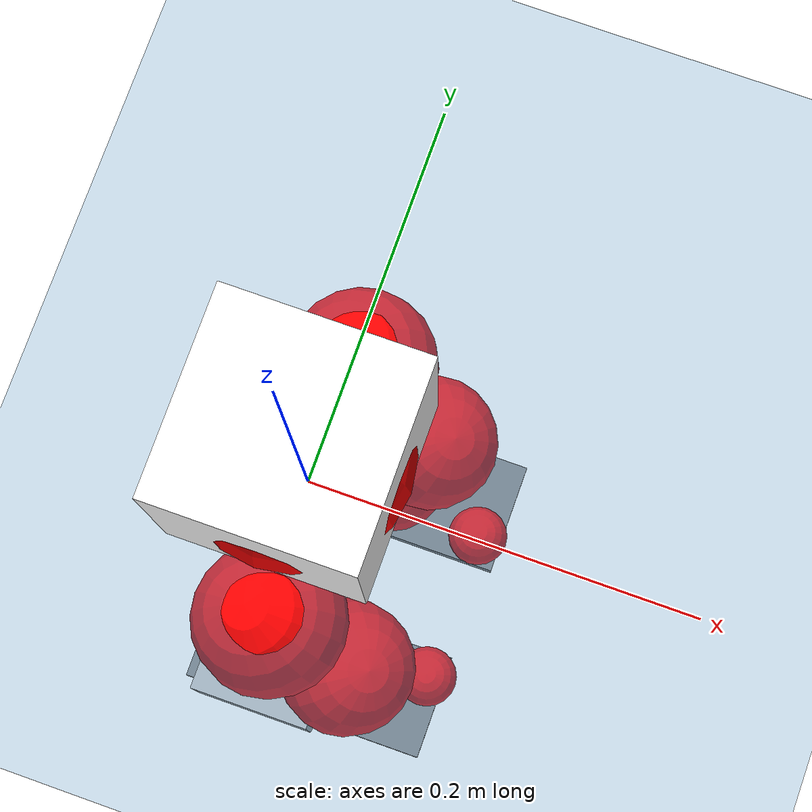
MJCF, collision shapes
<mujoco model="pi_12dof_release_v1">
  <compiler angle="radian" assetdir="assets" balanceinertia="true" inertiafromgeom="false"/>

  <option timestep="0.005" density="1.2" viscosity="2e-05"/>

  <size nkey="1"/>

  <visual>
    <quality shadowsize="8192"/>
    <map shadowclip="0.5"/>
  </visual>

  <default>
    <default class="/">
      <joint armature="0.01" damping="0.01" frictionloss="0.01"/>
      <geom contype="0" conaffinity="0" group="1" solref="-1000 -80"/>
      <site size="0.01 0.005 0.005" group="5"/>
      <general forcelimited="true" biastype="affine" gainprm="20" biasprm="0 -20 -0.5"/>
      <default class="foot">
        <geom size="0.0845 0.036 0.005" type="box" condim="6" group="4" priority="1" friction="0.9 0.2 0.2" solimp="0.015 1 0.005"/>
      </default>
      <default class="reward_collision_sphere">
        <geom group="5" rgba="1 0 0 1"/>
      </default>
    </default>
  </default>

  <asset>
    <texture type="skybox" colorspace="auto" name="//unnamed_texture_0" builtin="gradient" rgb1="0.95 0.95 0.95" rgb2="0.95 0.95 0.95" width="100" height="600"/>
    <texture type="2d" colorspace="auto" name="texplane" builtin="checker" rgb1="0.345 0.575 0.748" rgb2="0.345 0.575 0.748" markrgb="1 1 1" width="512" height="512"/>
    <material name="MatPlane" class="/" texture="texplane" texuniform="true" texrepeat="2 2" specular="0.9"/>
    <mesh name="baselink_1" class="/" file="baselink_1.STL"/>
    <mesh name="r_hip_pitch_link" class="/" file="r_hip_pitch_link.STL"/>
    <mesh name="r_hip_roll_link" class="/" file="r_hip_roll_link.STL"/>
    <mesh name="r_thigh_link" class="/" file="r_thigh_link.STL"/>
    <mesh name="r_calf_link" class="/" file="r_calf_link.STL"/>
    <mesh name="r_ankle_pitch_link" class="/" file="r_ankle_pitch_link.STL"/>
    <mesh name="r_ankle_roll_link" class="/" file="r_ankle_roll_link.STL"/>
    <mesh name="l_hip_pitch_link" class="/" file="l_hip_pitch_link.STL"/>
    <mesh name="l_hip_roll_link" class="/" file="l_hip_roll_link.STL"/>
    <mesh name="l_thigh_link" class="/" file="l_thigh_link.STL"/>
    <mesh name="l_calf_link" class="/" file="l_calf_link.STL"/>
    <mesh name="l_ankle_pitch_link" class="/" file="l_ankle_pitch_link.STL"/>
    <mesh name="l_ankle_roll_link" class="/" file="l_ankle_roll_link.STL"/>
  </asset>

  <worldbody>
    <geom name="floor" class="/" size="100 100 0.125" type="plane" group="0" material="MatPlane"/>
    <light name="toplight_shadow" class="/" pos="0 0 5" dir="0.0990148 0.0990148 -0.990148" type="directional" ambient="0.04 0.04 0.04" diffuse="0.55 0.55 0.55" specular="0.12 0.12 0.12"/>
    <light name="toplight_fill" class="/" pos="0 0 5" dir="0.0990148 0.0990148 -0.990148" type="directional" castshadow="false" ambient="0.04 0.04 0.04" diffuse="0.3 0.3 0.3" specular="0.08 0.08 0.08"/>
    <body name="trunk" pos="-0.00027529 -0.000102634 -0.000286196" quat="1 -4.31378e-05 -0.000175966 -0.00032442">
      <inertial pos="0.0010855 -0.00123274 0.0423815" quat="0.696628 0.00942025 0.00817898 0.717324" mass="2.11016" diaginertia="0.0125115 0.00469306 0.00509409"/>
      <joint name="//unnamed_joint_0" type="free"/>
      <geom name="//unnamed_geom_1" class="/" type="mesh" density="0" rgba="1 1 1 1" mesh="baselink_1"/>
      <geom name="//unnamed_geom_2" class="/" size="0.0495104 0.0495104 0.0495104" pos="0 0 0.0832508" type="box" rgba="1 1 1 1"/>
      <geom name="//unnamed_geom_3" class="reward_collision_sphere" size="0.0544614" pos="0 0 0.0728445"/>
      <site name="imu" class="/" pos="0.00279668 -0.000116197 -0.00269636" size="0.00990207"/>
      <camera name="track" class="/" pos="0 -1.75706 0" quat="0.707107 0.707107 0 0" mode="trackcom"/>
      <camera name="ego_camera" class="/" pos="0.0788593 0 0.187314" quat="-0.5 -0.5 0.5 0.5"/>
      <body name="r_hip_pitch_link" pos="0.00045781 -0.0190292 -0.0335965" quat="0.992195 3.42017e-06 -0.124699 -2.11428e-05">
        <inertial pos="0.00121008 -0.0488787 -1.39523e-05" quat="-0.0191691 0.705955 -0.0278792 0.707449" mass="0.349507" diaginertia="0.0001376 5.06507e-05 9.9808e-05"/>
        <joint name="r_hip_pitch_joint" class="/" pos="0 0 0" axis="0.00130391 -0.999998 -0.001579" range="-1.7472 1.2329" armature="0.0098625" damping="0.0133917" frictionloss="0.0102231"/>
        <geom name="//unnamed_geom_4" class="/" type="mesh" density="0" rgba="0.75294 0.75294 0.75294 1" mesh="r_hip_pitch_link"/>
        <geom name="//unnamed_geom_5" class="/" size="0.000495104 0.000495104 0.000495104" type="box" rgba="0.75294 0.75294 0.75294 1"/>
        <body name="r_hip_roll_link" pos="0.00134739 -0.0476841 -0.000952828" quat="1 -4.35271e-05 2.22745e-05 -5.04264e-05">
          <inertial pos="-0.00108796 1.05619e-05 -0.0644039" quat="0.704464 -0.0791841 -0.0824376 0.700474" mass="0.381139" diaginertia="0.000429622 0.000143867 0.000156984"/>
          <joint name="r_hip_roll_joint" class="/" pos="0 0 0" axis="-0.999995 -0.00328704 -9.48119e-05" range="-0.114612 0.498245" armature="0.0103581" damping="0.000531194" frictionloss="0.010263"/>
          <geom name="//unnamed_geom_6" class="/" type="mesh" density="0" rgba="0.75294 0.75294 0.75294 1" mesh="r_hip_roll_link"/>
          <geom name="//unnamed_geom_7" class="/" size="0.000495104 0.000495104 0.000495104" type="box" rgba="0.75294 0.75294 0.75294 1"/>
          <geom name="//unnamed_geom_8" class="reward_collision_sphere" size="0.0396083"/>
          <body name="r_thigh_link" pos="-0.000882161 0.00121882 -0.0717026" quat="1 -1.67169e-05 0.000115774 -2.60594e-05">
            <inertial pos="0.000306924 0.0011238 -0.0484934" quat="0.737179 0.675698 -0.000388757 -0.000423138" mass="0.108821" diaginertia="0.000159851 4.92181e-05 7.06657e-05"/>
            <joint name="r_thigh_joint" class="/" pos="0 0 0" axis="-0.000172064 0.000517395 -1" range="-0.288884 0.585843" armature="0.010242" damping="0.0099508" frictionloss="0.00946581"/>
            <geom name="//unnamed_geom_9" class="/" type="mesh" density="0" rgba="0.75294 0.75294 0.75294 1" mesh="r_thigh_link"/>
            <geom name="//unnamed_geom_10" class="/" size="0.000495104 0.000495104 0.000495104" type="box" rgba="0.75294 0.75294 0.75294 1"/>
            <body name="r_calf_link" pos="-0.000842482 -0.00276458 -0.0733967" quat="0.947647 1.50131e-06 0.319318 6.6125e-06">
              <inertial pos="0.000449353 -0.00211325 -0.0718569" quat="0.999958 -0.000846615 -0.000438225 0.00914047" mass="0.796839" diaginertia="0.00457123 0.00185381 0.000215699"/>
              <joint name="r_calf_joint" class="/" pos="0 0 0" axis="-0.00499912 -0.999987 -0.000119953" stiffness="0.00191651" range="-1.64968 0.635617" armature="0.0103642" damping="0.00804802" frictionloss="0.00980664"/>
              <geom name="//unnamed_geom_11" class="/" type="mesh" density="0" rgba="0.75294 0.75294 0.75294 1" mesh="r_calf_link"/>
              <geom name="//unnamed_geom_12" class="/" size="0.000495104 0.000495104 0.000495104" type="box" rgba="0.75294 0.75294 0.75294 1"/>
              <geom name="//unnamed_geom_13" class="reward_collision_sphere" size="0.0396083"/>
              <body name="r_ankle_pitch_link" pos="-5.92427e-05 0.000767523 -0.145975" quat="0.980063 1.25211e-05 -0.198689 1.6934e-05">
                <inertial pos="0.00546357 0.00290004 0.000713457" quat="0.00500548 0.709641 -0.00301515 0.704539" mass="0.16891" diaginertia="0.0003972 0.000115528 0.000146342"/>
                <joint name="r_ankle_pitch_joint" class="/" pos="0 0 0" axis="0.00385058 -0.999986 -0.00376455" range="-1.29506 0.484789" armature="0.00941851" damping="0.0065904" frictionloss="0.00990877"/>
                <geom name="//unnamed_geom_14" class="/" type="mesh" density="0" rgba="0.75294 0.75294 0.75294 1" mesh="r_ankle_pitch_link"/>
                <geom name="//unnamed_geom_15" class="/" size="0.0386181 0.0396083 0.0247552" type="box" rgba="0.75294 0.75294 0.75294 1"/>
                <body name="r_ankle_roll_link" pos="0.0811333 0.00332436 -0.000408473" quat="1 0.000236026 -0.000299323 0.00018162">
                  <inertial pos="-0.0248019 0.000119675 -0.0152893" quat="0.563056 0.431794 0.43177 0.556864" mass="0.495324" diaginertia="0.00143626 0.000542284 0.000343784"/>
                  <joint name="r_ankle_roll_joint" class="/" pos="0 0 0" axis="-0.999993 0.00373143 0.000786151" range="-0.166641 0.151532" armature="0.0102707" damping="0.00693278" frictionloss="0.0100211"/>
                  <geom name="//unnamed_geom_16" class="/" type="mesh" density="0" rgba="0.75294 0.75294 0.75294 1" mesh="r_ankle_roll_link"/>
                  <geom name="//unnamed_geom_17" class="/" type="mesh" rgba="0.75294 0.75294 0.75294 1" mesh="r_ankle_roll_link"/>
                  <geom name="right_foot" class="foot" size="0.0811003 0.0345073 0.00475838" pos="-0.0536243 0 -0.0457879"/>
                  <geom name="//unnamed_geom_19" class="reward_collision_sphere" size="0.0396083" pos="-0.0525728 0 -0.0208127"/>
                  <geom name="//unnamed_geom_20" class="reward_collision_sphere" size="0.0198041" pos="0.0157719 0.0175706 -0.0416254"/>
                  <geom name="//unnamed_geom_21" class="reward_collision_sphere" size="0.0198041" pos="-0.126175 0.0175706 -0.0416254"/>
                  <site name="right_foot" class="foot" pos="-0.0536243 0 -0.0457879" size="0.00990207"/>
                </body>
              </body>
            </body>
          </body>
        </body>
      </body>
      <body name="l_hip_pitch_link" pos="0.000182187 0.020983 -0.0341896" quat="0.992198 1.77358e-05 -0.124674 -5.14874e-06">
        <inertial pos="0.00107703 0.0465156 -0.00102813" quat="-0.0377221 0.706048 0.0307526 0.706489" mass="0.381361" diaginertia="0.000169274 5.51829e-05 0.000125436"/>
        <joint name="l_hip_pitch_joint" class="/" pos="0 0 0" axis="2.16865e-05 1 0.000261355" range="-1.23671 1.75102" armature="0.00976962" damping="0.00745114" frictionloss="0.0103025"/>
        <geom name="//unnamed_geom_22" class="/" type="mesh" density="0" rgba="0.75294 0.75294 0.75294 1" mesh="l_hip_pitch_link"/>
        <geom name="//unnamed_geom_23" class="/" size="0.000495104 0.000495104 0.000495104" type="box" rgba="0.75294 0.75294 0.75294 1"/>
        <body name="l_hip_roll_link" pos="0.000628376 0.0500369 -0.000412087" quat="1 -7.93336e-05 5.59424e-05 5.36588e-05">
          <inertial pos="-0.0024827 -0.000350652 -0.0646011" quat="0.699639 -0.0757262 -0.0786689 0.706103" mass="0.383357" diaginertia="0.000426132 0.000145248 0.0001574"/>
          <joint name="l_hip_roll_joint" class="/" pos="0 0 0" axis="-1 -0.000119613 -1.6484e-05" range="-0.505727 0.108134" armature="0.00973765" damping="0.0029992" frictionloss="0.0103636"/>
          <geom name="//unnamed_geom_24" class="/" type="mesh" density="0" rgba="0.75294 0.75294 0.75294 1" mesh="l_hip_roll_link"/>
          <geom name="//unnamed_geom_25" class="/" size="0.000495104 0.000495104 0.000495104" type="box" rgba="0.75294 0.75294 0.75294 1"/>
          <geom name="//unnamed_geom_26" class="reward_collision_sphere" size="0.0396083"/>
          <body name="l_thigh_link" pos="0.000324195 -0.000933008 -0.0711866" quat="1 -2.78493e-05 2.23543e-05 4.44381e-06">
            <inertial pos="-0.000478045 -0.00150847 -0.0490887" quat="0.677678 0.735352 -0.00316205 -7.63572e-05" mass="0.111103" diaginertia="0.000164891 5.04118e-05 7.18328e-05"/>
            <joint name="l_thigh_joint" class="/" pos="0 0 0" axis="-0.00061422 0.000891474 -0.999999" range="-0.615782 0.316379" armature="0.00980621" damping="0.0025866" frictionloss="0.00999771"/>
            <geom name="//unnamed_geom_27" class="/" type="mesh" density="0" rgba="0.75294 0.75294 0.75294 1" mesh="l_thigh_link"/>
            <geom name="//unnamed_geom_28" class="/" size="0.000495104 0.000495104 0.000495104" type="box" rgba="0.75294 0.75294 0.75294 1"/>
            <body name="l_calf_link" pos="0.000899606 0.000438905 -0.0736218" quat="0.947677 0.00012989 0.319231 -0.000220056">
              <inertial pos="0.00133127 0.00208207 -0.0739762" quat="0.999985 -0.00127807 -0.00485773 0.00211186" mass="0.776914" diaginertia="0.00445811 0.00180919 0.000209615"/>
              <joint name="l_calf_joint" class="/" pos="0 0 0" axis="0.00186608 0.999997 -0.0014639" stiffness="0.00148404" range="-0.651485 1.6451" armature="0.0100225" damping="0.00467768" frictionloss="0.0097009"/>
              <geom name="//unnamed_geom_29" class="/" type="mesh" density="0" rgba="0.75294 0.75294 0.75294 1" mesh="l_calf_link"/>
              <geom name="//unnamed_geom_30" class="/" size="0.000495104 0.000495104 0.000495104" type="box" rgba="0.75294 0.75294 0.75294 1"/>
              <geom name="//unnamed_geom_31" class="reward_collision_sphere" size="0.0396083"/>
              <body name="l_ankle_pitch_link" pos="0.00151876 -2.05849e-05 -0.146013" quat="0.98007 -2.24857e-05 -0.198654 -8.13898e-05">
                <inertial pos="0.00503193 -0.00168275 0.000446402" quat="-0.0019354 0.707143 0.00210142 0.707065" mass="0.173843" diaginertia="0.000402266 0.000117573 0.000147287"/>
                <joint name="l_ankle_pitch_joint" class="/" pos="0 0 0" axis="0.000575412 1 -6.1669e-05" range="-0.485326 1.32005" armature="0.0102899" damping="0.00668688" frictionloss="0.00958529"/>
                <geom name="//unnamed_geom_32" class="/" type="mesh" density="0" rgba="0.75294 0.75294 0.75294 1" mesh="l_ankle_pitch_link"/>
                <geom name="//unnamed_geom_33" class="/" size="0.0386181 0.0396083 0.0247552" type="box" rgba="0.75294 0.75294 0.75294 1"/>
                <body name="l_ankle_roll_link" pos="0.0788669 0.000329755 0.00021457" quat="1 -0.000185653 5.87324e-05 -0.000260386">
                  <inertial pos="-0.0261875 0.000594084 -0.0146517" quat="0.5596 0.429412 0.433501 0.56083" mass="0.50515" diaginertia="0.00146974 0.000539509 0.000349061"/>
                  <joint name="l_ankle_roll_joint" class="/" pos="0 0 0" axis="-1 0.000327136 -0.000499572" range="-0.154344 0.16799" armature="0.00973485" damping="0.0115566" frictionloss="0.00952749"/>
                  <geom name="//unnamed_geom_34" class="/" type="mesh" density="0" rgba="0.75294 0.75294 0.75294 1" mesh="l_ankle_roll_link"/>
                  <geom name="//unnamed_geom_35" class="/" type="mesh" rgba="0.75294 0.75294 0.75294 1" mesh="l_ankle_roll_link"/>
                  <geom name="left_foot" class="foot" size="0.0854641 0.0370425 0.00480195" pos="-0.0536243 0 -0.0457879"/>
                  <geom name="//unnamed_geom_37" class="reward_collision_sphere" size="0.0396083" pos="-0.0525728 0 -0.0208127"/>
                  <geom name="//unnamed_geom_38" class="reward_collision_sphere" size="0.0198041" pos="0.0157719 -0.0175706 -0.0416254"/>
                  <geom name="//unnamed_geom_39" class="reward_collision_sphere" size="0.0198041" pos="-0.126175 -0.0175706 -0.0416254"/>
                  <site name="left_foot" class="foot" pos="-0.0536243 0 -0.0457879" size="0.00990207"/>
                </body>
              </body>
            </body>
          </body>
        </body>
      </body>
    </body>
  </worldbody>

  <contact>
    <pair class="/" geom1="floor" geom2="right_foot" name="//unnamed_contact_1"/>
    <pair class="/" geom1="floor" geom2="left_foot" name="//unnamed_contact_0"/>
  </contact>

  <actuator>
    <general name="r_hip_pitch_joint" class="/" joint="r_hip_pitch_joint" forcerange="-20.5852 20.5852" gainprm="19.1962" biasprm="0 -19.1962 -0.490073"/>
    <general name="r_hip_roll_joint" class="/" joint="r_hip_roll_joint" forcerange="-20.7397 20.7397" gainprm="19.1962" biasprm="0 -19.1962 -0.490073"/>
    <general name="r_thigh_joint" class="/" joint="r_thigh_joint" forcerange="-20.6825 20.6825" gainprm="19.1962" biasprm="0 -19.1962 -0.490073"/>
    <general name="r_calf_joint" class="/" joint="r_calf_joint" forcerange="-21.1105 21.1105" gainprm="19.1962" biasprm="0 -19.1962 -0.490073"/>
    <general name="r_ankle_pitch_joint" class="/" joint="r_ankle_pitch_joint" forcerange="-21.1241 21.1241" gainprm="19.1962" biasprm="0 -19.1962 -0.490073"/>
    <general name="r_ankle_roll_joint" class="/" joint="r_ankle_roll_joint" forcerange="-20.6607 20.6607" gainprm="19.1962" biasprm="0 -19.1962 -0.490073"/>
    <general name="l_hip_pitch_joint" class="/" joint="l_hip_pitch_joint" forcerange="-21.1924 21.1924" gainprm="19.1962" biasprm="0 -19.1962 -0.490073"/>
    <general name="l_hip_roll_joint" class="/" joint="l_hip_roll_joint" forcerange="-20.211 20.211" gainprm="19.1962" biasprm="0 -19.1962 -0.490073"/>
    <general name="l_thigh_joint" class="/" joint="l_thigh_joint" forcerange="-20.9686 20.9686" gainprm="19.1962" biasprm="0 -19.1962 -0.490073"/>
    <general name="l_calf_joint" class="/" joint="l_calf_joint" forcerange="-20.7749 20.7749" gainprm="19.1962" biasprm="0 -19.1962 -0.490073"/>
    <general name="l_ankle_pitch_joint" class="/" joint="l_ankle_pitch_joint" forcerange="-20.2263 20.2263" gainprm="19.1962" biasprm="0 -19.1962 -0.490073"/>
    <general name="l_ankle_roll_joint" class="/" joint="l_ankle_roll_joint" forcerange="-20.3985 20.3985" gainprm="19.1962" biasprm="0 -19.1962 -0.490073"/>
  </actuator>

  <sensor>
    <gyro site="imu" name="imu_angular_velocity"/>
    <velocimeter site="imu" name="imu_linear_velocity"/>
    <framelinvel objtype="site" objname="left_foot" name="left_foot_global_linear_velocity"/>
    <framelinvel objtype="site" objname="right_foot" name="right_foot_global_linear_velocity"/>
  </sensor>

  <keyframe>
    <key name="home" qpos="0 0 0.291 1 0 0 0 0.4 0 0 -0.8 0.4 0 -0.4 0 0 0.8 -0.4 0"/>
  </keyframe>
</mujoco>
